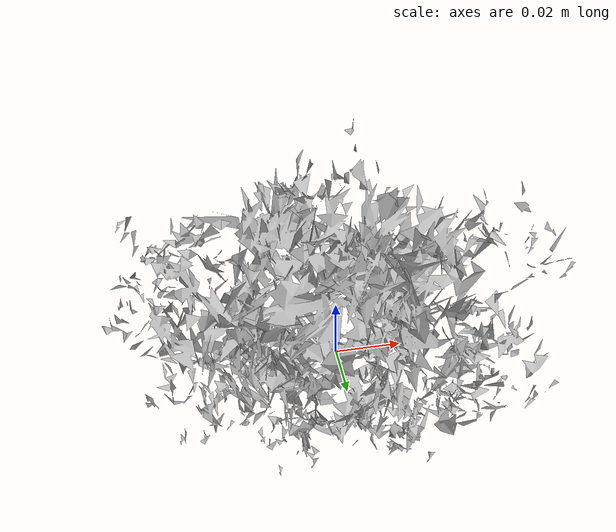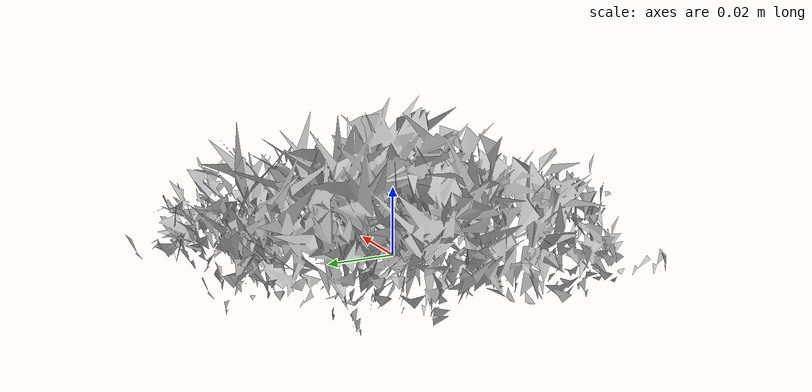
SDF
<?xml version="1.0" ?>
<sdf version="1.6">
    <model name="MT_PM_V60_Cynodon_dactylon_01_01">
        <static>true</static>
        <link name="link">
            <collision name="collision">
                <geometry>
                    <mesh>
                        <uri>model://grass/MT_PM_V60_Cynodon_dactylon_01_01/mesh/MT_PM_V60_Cynodon_dactylon_01_01_collision.dae</uri>
                    </mesh>
                </geometry>
            </collision>
            <visual name="visual">
                <geometry>
                    <mesh>
                        <uri>model://grass/MT_PM_V60_Cynodon_dactylon_01_01/mesh/MT_PM_V60_Cynodon_dactylon_01_01.dae</uri>
                    </mesh>
                </geometry>
                <material>
                    <script>
                        <uri>model://grass/MT_PM_V60_Cynodon_dactylon_01_01/materials/MT_PM_V60_Cynodon_dactylon_01_01.material</uri>
                        <name>MT_PM_V60_Cynodon_dactylon_01_01</name>
                    </script>
                </material>
            </visual>
        </link>
    </model>
</sdf>
